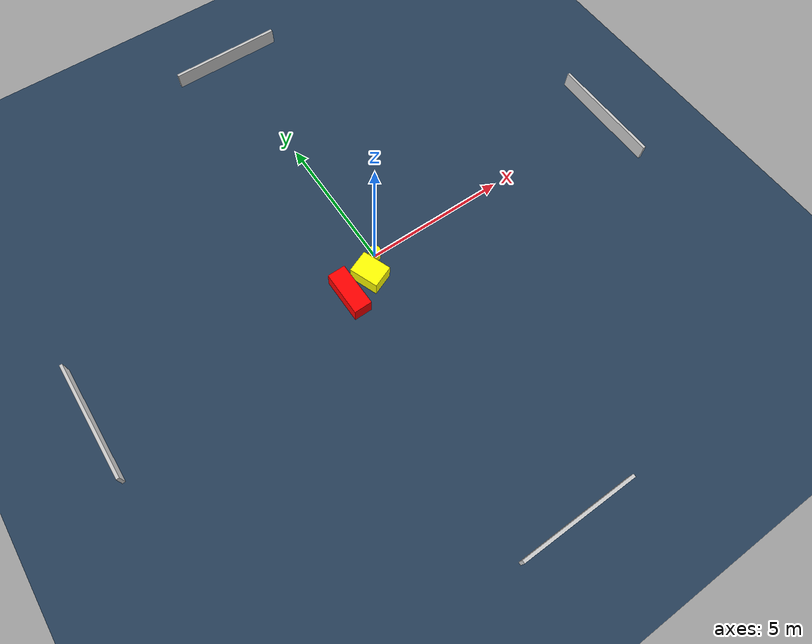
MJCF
<?xml version="1.0" ?>
<mujoco model="generated_environment">
  <option timestep="0.01" integrator="RK4" cone="elliptic"/>
  <default>
    <geom density="1"/>
  </default>
  <asset>
    <texture builtin="gradient" height="3072" name="skybox" rgb1="0.3 0.5 0.7" rgb2="0 0 0" type="skybox" width="512"/>
    <texture builtin="checker" height="300" name="groundplane" rgb1="0.2 0.3 0.4" rgb2="0.1 0.2 0.3" type="2d" width="300"/>
    <material name="groundplane" reflectance="0.2" texrepeat="5 5" texture="groundplane"/>
  </asset>
  <worldbody>
    <light dir="0 0 -1" directional="true" pos="0 0 1.5"/>
    <geom condim="3" friction="0.5 0.005 0.001" material="groundplane" name="floor" pos="0 0 0" size="0 0 0.05" type="plane"/>
    <body name="walls">
      <geom name="wall_1" condim="4" pos="-10.0 0.0 0.3" rgba="0.800000011920929 0.800000011920929 0.800000011920929 1.0" size="0.05 2.0 0.3" type="box"/>
      <geom name="wall_2" condim="4" pos="10.0 0.0 0.3" rgba="0.800000011920929 0.800000011920929 0.800000011920929 1.0" size="0.05 2.0 0.3" type="box"/>
      <geom name="wall_3" condim="4" pos="0.0 -10.0 0.3" rgba="0.800000011920929 0.800000011920929 0.800000011920929 1.0" size="2.0 0.05 0.3" type="box"/>
      <geom name="wall_4" condim="4" pos="0.0 10.0 0.3" rgba="0.800000011920929 0.800000011920929 0.800000011920929 1.0" size="2.0 0.05 0.3" type="box"/>
    </body>
    <body name="robot">
      <joint name="joint_x" type="slide" pos="0 0 0" axis="1 0 0"/>
      <joint name="joint_y" type="slide" pos="0 0 0" axis="0 1 0"/>
      <geom name="robot" type="cylinder" pos="0.0 0.0 0.2" size="0.2 0.2 0.0" mass="5.0" friction="1.0 0.005 0.0001" condim="4" rgba="1.0 1.0 0.0 1.0"/>
    </body>
    <body name="obstacle_1_movable">
      <geom name="obstacle_1_movable" condim="4" pos="-0.540911013386812 -0.5378822803545862 0.3" euler="0 0 21.62533630458624" friction="0.0 0.005 0.001" rgba="1.0 1.0 0.0 1.0" size="0.3916791577276471 0.5032654831800667 0.3" type="box" mass="0.1"/>
      <joint type="free"/>
    </body>
    <body name="obstacle_2_static">
      <geom name="obstacle_2_static" condim="4" pos="-1.4714642631155563 -0.7589313446076181 0.3" euler="0 0 90.64082310121626" friction="0.0 0.005 0.001" rgba="1.0 0.0 0.0 1.0" size="0.7684415271887219 0.3121676149624306 0.3" type="box"/>
    </body>
  </worldbody>
  <actuator>
    <motor name="actuator_x" joint="joint_x" gear="1" ctrlrange="-1 1"/>
    <motor name="actuator_y" joint="joint_y" gear="1" ctrlrange="-1 1"/>
  </actuator>
</mujoco>
